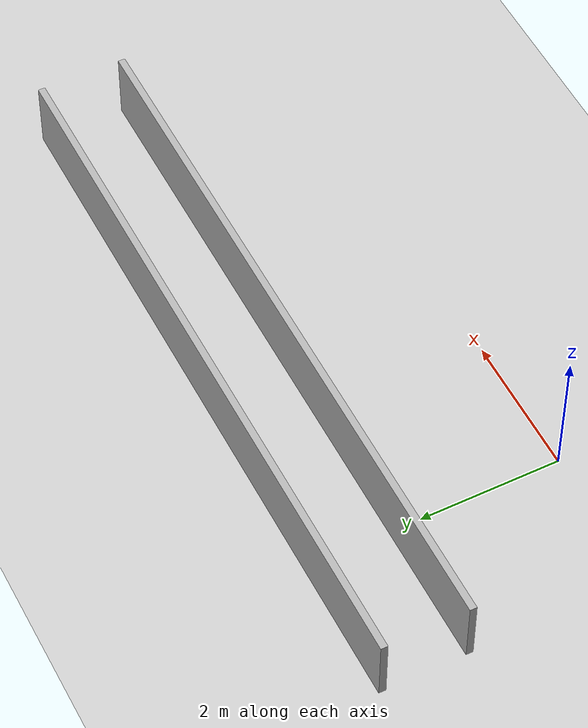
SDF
<?xml version="1.0" ?>
<sdf version="1.6">
  <world name="s2_narrow_corridor">
    <physics name="1ms" type="ignored">
      <max_step_size>0.001</max_step_size>
      <real_time_factor>1.0</real_time_factor>
    </physics>
    <plugin filename="ignition-gazebo-physics-system" name="ignition::gazebo::systems::Physics"/>
    <plugin filename="ignition-gazebo-user-commands-system" name="ignition::gazebo::systems::UserCommands"/>
    <plugin filename="ignition-gazebo-scene-broadcaster-system" name="ignition::gazebo::systems::SceneBroadcaster"/>
    <plugin filename="ignition-gazebo-sensors-system" name="ignition::gazebo::systems::Sensors">
      <render_engine>ogre2</render_engine>
    </plugin>
    <light type="directional" name="sun">
      <cast_shadows>true</cast_shadows>
      <pose>0 0 10 0 0 0</pose>
      <diffuse>0.8 0.8 0.8 1</diffuse>
      <specular>0.2 0.2 0.2 1</specular>
      <attenuation>
        <range>1000</range>
        <constant>0.9</constant>
        <linear>0.01</linear>
        <quadratic>0.001</quadratic>
      </attenuation>
      <direction>-0.5 0.1 -0.9</direction>
    </light>
    <model name="ground_plane">
      <static>true</static>
      <link name="link">
        <collision name="collision">
          <geometry>
            <plane>
              <normal>0 0 1</normal>
              <size>100 100</size>
            </plane>
          </geometry>
        </collision>
        <visual name="visual">
          <geometry>
            <plane>
              <normal>0 0 1</normal>
              <size>100 100</size>
            </plane>
          </geometry>
          <material>
            <ambient>0.8 0.8 0.8 1</ambient>
            <diffuse>0.8 0.8 0.8 1</diffuse>
            <specular>0.8 0.8 0.8 1</specular>
          </material>
        </visual>
      </link>
    </model>

    <!-- Narrow Corridor Walls -->
    <model name="left_corridor_wall">
      <static>true</static>
      <pose>3.0 3.6 0.5 0 0 0</pose>
      <link name="link">
        <collision name="collision">
          <geometry>
            <box>
              <size>10.0 0.1 1.0</size>
            </box>
          </geometry>
        </collision>
        <visual name="visual">
          <geometry>
            <box>
              <size>10.0 0.1 1.0</size>
            </box>
          </geometry>
          <material>
            <ambient>0.7 0.7 0.7 1.0</ambient>
            <diffuse>0.7 0.7 0.7 1.0</diffuse>
          </material>
        </visual>
      </link>
    </model>

    <model name="right_corridor_wall">
      <static>true</static>
      <pose>3.0 2.4 0.5 0 0 0</pose>
      <link name="link">
        <collision name="collision">
          <geometry>
            <box>
              <size>10.0 0.1 1.0</size>
            </box>
          </geometry>
        </collision>
        <visual name="visual">
          <geometry>
            <box>
              <size>10.0 0.1 1.0</size>
            </box>
          </geometry>
          <material>
            <ambient>0.7 0.7 0.7 1.0</ambient>
            <diffuse>0.7 0.7 0.7 1.0</diffuse>
          </material>
        </visual>
      </link>
    </model>
  </world>
</sdf>
